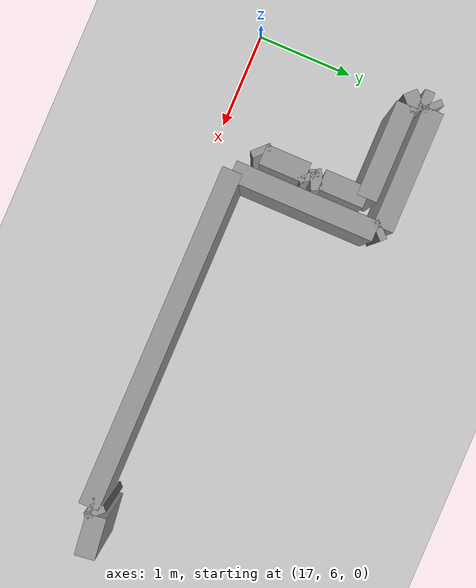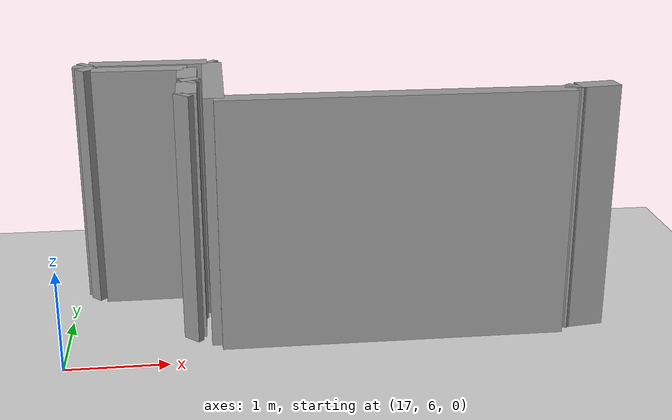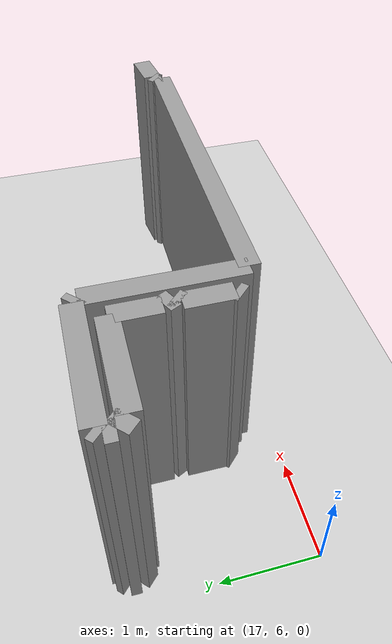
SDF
<sdf version="1.4">
 <world name="1_wall">
  <model name="ground_plane">
   <static>1</static>
   <link name="link">
    <collision name="collision">
     <geometry><plane><normal>0 0 1</normal><size>1000 1000</size></plane></geometry>
     <surface><friction><ode><mu>100</mu><mu2>50</mu2></ode></friction></surface>
    </collision>
    <visual name="visual">
     <cast_shadows>0</cast_shadows>
     <geometry><plane><normal>0 0 1</normal><size>10000 10000</size></plane></geometry>
     <material>
      <script><uri>file://media/materials/scripts/gazebo.material</uri><name>Gazebo/Grey</name></script>
     </material>
    </visual>
    <velocity_decay><linear>0</linear><angular>0</angular></velocity_decay>
   </link>
  </model>
  <model name="Wall_497">
   <static>1</static>
   <link name="Wall_497">
    <collision name="Wall_Collision_497">
     <geometry><box><size>0.40311288741492607 0.2 2.5</size></box></geometry>
     <pose>0 0 1.25 0 -0 0</pose>
    </collision>
    <visual name="Wall_Visual_497">
     <pose>0 0 1.25 0 -0 0</pose>
     <geometry><box><size>0.40311288741492607 0.2 2.5</size></box></geometry>
     <material>
      <script><uri>file://media/materials/scripts/gazebo.material</uri><name>Gazebo/Grey</name></script>
     </material>
    </visual>
    <velocity_decay><linear>0</linear><angular>0</angular></velocity_decay>
    <pose>22.150000000000002 6.475 0 0 0 -3.017237659043032</pose>
   </link>
  </model>
  <model name="Wall_498">
   <static>1</static>
   <link name="Wall_498">
    <collision name="Wall_Collision_498">
     <geometry><box><size>0.07071067811865513 0.2 2.5</size></box></geometry>
     <pose>0 0 1.25 0 -0 0</pose>
    </collision>
    <visual name="Wall_Visual_498">
     <pose>0 0 1.25 0 -0 0</pose>
     <geometry><box><size>0.07071067811865513 0.2 2.5</size></box></geometry>
     <material>
      <script><uri>file://media/materials/scripts/gazebo.material</uri><name>Gazebo/Grey</name></script>
     </material>
    </visual>
    <velocity_decay><linear>0</linear><angular>0</angular></velocity_decay>
    <pose>21.925000000000004 6.425000000000001 0 0 0 -2.3561944901923537</pose>
   </link>
  </model>
  <model name="Wall_499">
   <static>1</static>
   <link name="Wall_499">
    <collision name="Wall_Collision_499">
     <geometry><box><size>0.04999999999999982 0.2 2.5</size></box></geometry>
     <pose>0 0 1.25 0 -0 0</pose>
    </collision>
    <visual name="Wall_Visual_499">
     <pose>0 0 1.25 0 -0 0</pose>
     <geometry><box><size>0.04999999999999982 0.2 2.5</size></box></geometry>
     <material>
      <script><uri>file://media/materials/scripts/gazebo.material</uri><name>Gazebo/Grey</name></script>
     </material>
    </visual>
    <velocity_decay><linear>0</linear><angular>0</angular></velocity_decay>
    <pose>21.900000000000002 6.375 0 0 0 -1.5707963267948966</pose>
   </link>
  </model>
  <model name="Wall_500">
   <static>1</static>
   <link name="Wall_500">
    <collision name="Wall_Collision_500">
     <geometry><box><size>3.400000000000002 0.2 2.5</size></box></geometry>
     <pose>0 0 1.25 0 -0 0</pose>
    </collision>
    <visual name="Wall_Visual_500">
     <pose>0 0 1.25 0 -0 0</pose>
     <geometry><box><size>3.400000000000002 0.2 2.5</size></box></geometry>
     <material>
      <script><uri>file://media/materials/scripts/gazebo.material</uri><name>Gazebo/Grey</name></script>
     </material>
    </visual>
    <velocity_decay><linear>0</linear><angular>0</angular></velocity_decay>
    <pose>20.200000000000003 6.3500000000000005 0 0 0 3.141592653589793</pose>
   </link>
  </model>
  <model name="Wall_501">
   <static>1</static>
   <link name="Wall_501">
    <collision name="Wall_Collision_501">
     <geometry><box><size>1.4500000000000002 0.2 2.5</size></box></geometry>
     <pose>0 0 1.25 0 -0 0</pose>
    </collision>
    <visual name="Wall_Visual_501">
     <pose>0 0 1.25 0 -0 0</pose>
     <geometry><box><size>1.4500000000000002 0.2 2.5</size></box></geometry>
     <material>
      <script><uri>file://media/materials/scripts/gazebo.material</uri><name>Gazebo/Grey</name></script>
     </material>
    </visual>
    <velocity_decay><linear>0</linear><angular>0</angular></velocity_decay>
    <pose>18.5 7.075000000000001 0 0 0 1.5707963267948966</pose>
   </link>
  </model>
  <model name="Wall_502">
   <static>1</static>
   <link name="Wall_502">
    <collision name="Wall_Collision_502">
     <geometry><box><size>0.07071067811865513 0.2 2.5</size></box></geometry>
     <pose>0 0 1.25 0 -0 0</pose>
    </collision>
    <visual name="Wall_Visual_502">
     <pose>0 0 1.25 0 -0 0</pose>
     <geometry><box><size>0.07071067811865513 0.2 2.5</size></box></geometry>
     <material>
      <script><uri>file://media/materials/scripts/gazebo.material</uri><name>Gazebo/Grey</name></script>
     </material>
    </visual>
    <velocity_decay><linear>0</linear><angular>0</angular></velocity_decay>
    <pose>18.475 7.825000000000001 0 0 0 2.3561944901923537</pose>
   </link>
  </model>
  <model name="Wall_503">
   <static>1</static>
   <link name="Wall_503">
    <collision name="Wall_Collision_503">
     <geometry><box><size>1.1999999999999993 0.2 2.5</size></box></geometry>
     <pose>0 0 1.25 0 -0 0</pose>
    </collision>
    <visual name="Wall_Visual_503">
     <pose>0 0 1.25 0 -0 0</pose>
     <geometry><box><size>1.1999999999999993 0.2 2.5</size></box></geometry>
     <material>
      <script><uri>file://media/materials/scripts/gazebo.material</uri><name>Gazebo/Grey</name></script>
     </material>
    </visual>
    <velocity_decay><linear>0</linear><angular>0</angular></velocity_decay>
    <pose>17.85 7.8500000000000005 0 0 0 3.141592653589793</pose>
   </link>
  </model>
  <model name="Wall_504">
   <static>1</static>
   <link name="Wall_504">
    <collision name="Wall_Collision_504">
     <geometry><box><size>0.07071067811865513 0.2 2.5</size></box></geometry>
     <pose>0 0 1.25 0 -0 0</pose>
    </collision>
    <visual name="Wall_Visual_504">
     <pose>0 0 1.25 0 -0 0</pose>
     <geometry><box><size>0.07071067811865513 0.2 2.5</size></box></geometry>
     <material>
      <script><uri>file://media/materials/scripts/gazebo.material</uri><name>Gazebo/Grey</name></script>
     </material>
    </visual>
    <velocity_decay><linear>0</linear><angular>0</angular></velocity_decay>
    <pose>17.225 7.825000000000001 0 0 0 -2.3561944901923537</pose>
   </link>
  </model>
  <model name="Wall_505">
   <static>1</static>
   <link name="Wall_505">
    <collision name="Wall_Collision_505">
     <geometry><box><size>0.10000000000000053 0.2 2.5</size></box></geometry>
     <pose>0 0 1.25 0 -0 0</pose>
    </collision>
    <visual name="Wall_Visual_505">
     <pose>0 0 1.25 0 -0 0</pose>
     <geometry><box><size>0.10000000000000053 0.2 2.5</size></box></geometry>
     <material>
      <script><uri>file://media/materials/scripts/gazebo.material</uri><name>Gazebo/Grey</name></script>
     </material>
    </visual>
    <velocity_decay><linear>0</linear><angular>0</angular></velocity_decay>
    <pose>17.2 7.75 0 0 0 -1.5707963267948966</pose>
   </link>
  </model>
  <model name="Wall_506">
   <static>1</static>
   <link name="Wall_506">
    <collision name="Wall_Collision_506">
     <geometry><box><size>0.14142135623731025 0.2 2.5</size></box></geometry>
     <pose>0 0 1.25 0 -0 0</pose>
    </collision>
    <visual name="Wall_Visual_506">
     <pose>0 0 1.25 0 -0 0</pose>
     <geometry><box><size>0.14142135623731025 0.2 2.5</size></box></geometry>
     <material>
      <script><uri>file://media/materials/scripts/gazebo.material</uri><name>Gazebo/Grey</name></script>
     </material>
    </visual>
    <velocity_decay><linear>0</linear><angular>0</angular></velocity_decay>
    <pose>17.25 7.65 0 0 0 -0.7853981633974394</pose>
   </link>
  </model>
  <model name="Wall_507">
   <static>1</static>
   <link name="Wall_507">
    <collision name="Wall_Collision_507">
     <geometry><box><size>0.9499999999999993 0.2 2.5</size></box></geometry>
     <pose>0 0 1.25 0 -0 0</pose>
    </collision>
    <visual name="Wall_Visual_507">
     <pose>0 0 1.25 0 -0 0</pose>
     <geometry><box><size>0.9499999999999993 0.2 2.5</size></box></geometry>
     <material>
      <script><uri>file://media/materials/scripts/gazebo.material</uri><name>Gazebo/Grey</name></script>
     </material>
    </visual>
    <velocity_decay><linear>0</linear><angular>0</angular></velocity_decay>
    <pose>17.775 7.6000000000000005 0 0 0 0.0</pose>
   </link>
  </model>
  <model name="Wall_508">
   <static>1</static>
   <link name="Wall_508">
    <collision name="Wall_Collision_508">
     <geometry><box><size>0.4500000000000002 0.2 2.5</size></box></geometry>
     <pose>0 0 1.25 0 -0 0</pose>
    </collision>
    <visual name="Wall_Visual_508">
     <pose>0 0 1.25 0 -0 0</pose>
     <geometry><box><size>0.4500000000000002 0.2 2.5</size></box></geometry>
     <material>
      <script><uri>file://media/materials/scripts/gazebo.material</uri><name>Gazebo/Grey</name></script>
     </material>
    </visual>
    <velocity_decay><linear>0</linear><angular>0</angular></velocity_decay>
    <pose>18.25 7.375 0 0 0 -1.5707963267948966</pose>
   </link>
  </model>
  <model name="Wall_509">
   <static>1</static>
   <link name="Wall_509">
    <collision name="Wall_Collision_509">
     <geometry><box><size>0.11180339887498948 0.2 2.5</size></box></geometry>
     <pose>0 0 1.25 0 -0 0</pose>
    </collision>
    <visual name="Wall_Visual_509">
     <pose>0 0 1.25 0 -0 0</pose>
     <geometry><box><size>0.11180339887498948 0.2 2.5</size></box></geometry>
     <material>
      <script><uri>file://media/materials/scripts/gazebo.material</uri><name>Gazebo/Grey</name></script>
     </material>
    </visual>
    <velocity_decay><linear>0</linear><angular>0</angular></velocity_decay>
    <pose>18.275 7.1000000000000005 0 0 0 -1.1071487177940833</pose>
   </link>
  </model>
  <model name="Wall_510">
   <static>1</static>
   <link name="Wall_510">
    <collision name="Wall_Collision_510">
     <geometry><box><size>0.07071067811865576 0.2 2.5</size></box></geometry>
     <pose>0 0 1.25 0 -0 0</pose>
    </collision>
    <visual name="Wall_Visual_510">
     <pose>0 0 1.25 0 -0 0</pose>
     <geometry><box><size>0.07071067811865576 0.2 2.5</size></box></geometry>
     <material>
      <script><uri>file://media/materials/scripts/gazebo.material</uri><name>Gazebo/Grey</name></script>
     </material>
    </visual>
    <velocity_decay><linear>0</linear><angular>0</angular></velocity_decay>
    <pose>18.275 7.025 0 0 0 -2.356194490192345</pose>
   </link>
  </model>
  <model name="Wall_511">
   <static>1</static>
   <link name="Wall_511">
    <collision name="Wall_Collision_511">
     <geometry><box><size>0.4499999999999993 0.2 2.5</size></box></geometry>
     <pose>0 0 1.25 0 -0 0</pose>
    </collision>
    <visual name="Wall_Visual_511">
     <pose>0 0 1.25 0 -0 0</pose>
     <geometry><box><size>0.4499999999999993 0.2 2.5</size></box></geometry>
     <material>
      <script><uri>file://media/materials/scripts/gazebo.material</uri><name>Gazebo/Grey</name></script>
     </material>
    </visual>
    <velocity_decay><linear>0</linear><angular>0</angular></velocity_decay>
    <pose>18.25 6.775 0 0 0 -1.5707963267948966</pose>
   </link>
  </model>
  <model name="Wall_512">
   <static>1</static>
   <link name="Wall_512">
    <collision name="Wall_Collision_512">
     <geometry><box><size>0.07071067811865576 0.2 2.5</size></box></geometry>
     <pose>0 0 1.25 0 -0 0</pose>
    </collision>
    <visual name="Wall_Visual_512">
     <pose>0 0 1.25 0 -0 0</pose>
     <geometry><box><size>0.07071067811865576 0.2 2.5</size></box></geometry>
     <material>
      <script><uri>file://media/materials/scripts/gazebo.material</uri><name>Gazebo/Grey</name></script>
     </material>
    </visual>
    <velocity_decay><linear>0</linear><angular>0</angular></velocity_decay>
    <pose>18.225 6.525 0 0 0 -2.356194490192345</pose>
   </link>
  </model>
 </world>
</sdf>
